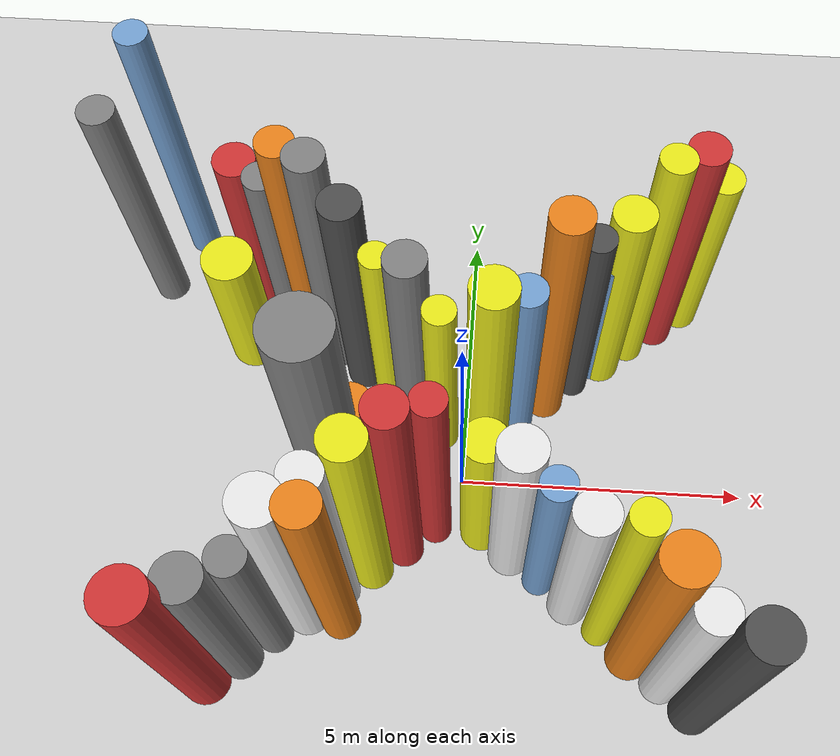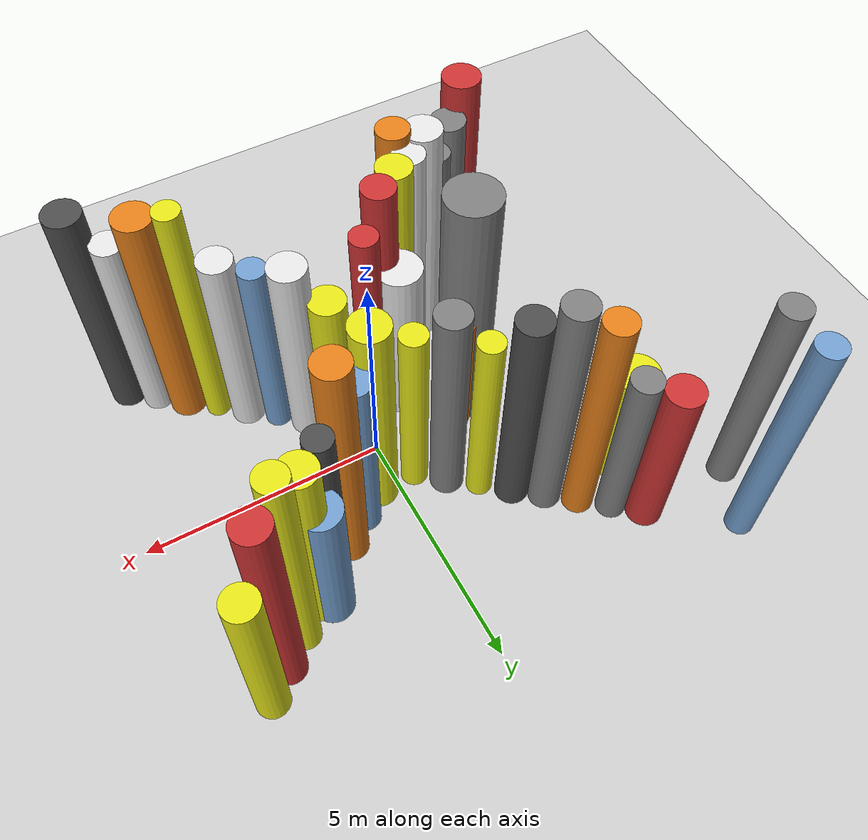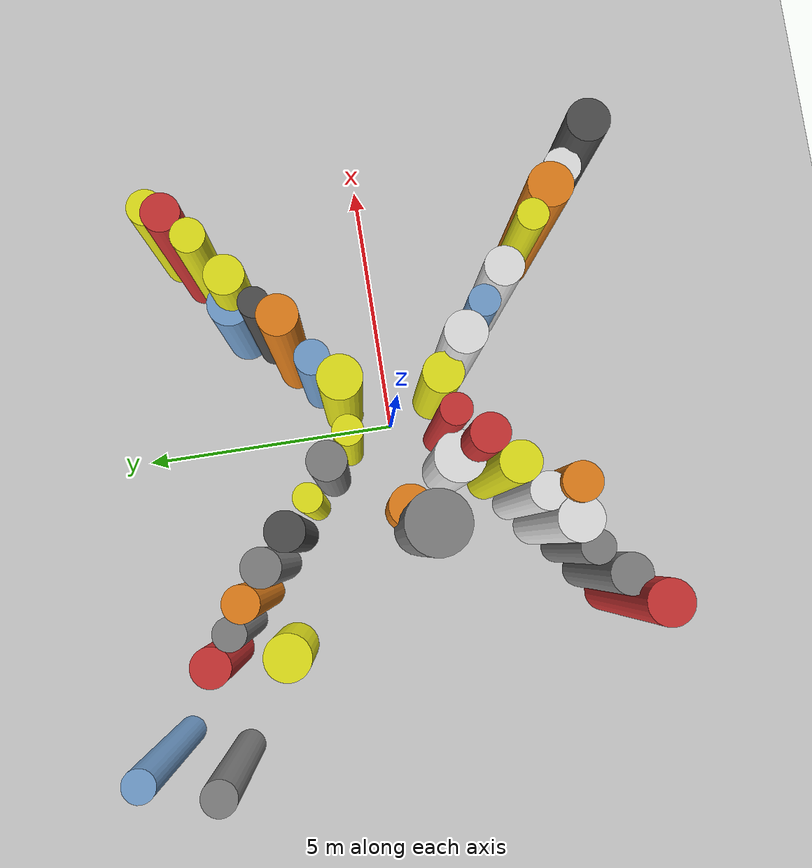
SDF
<?xml version='1.0'?>
<sdf version='1.6'>
  <world name='routeA_rl_v1__dense_recovery__rl_val__bottleneck_corridor__000030'>
    <!-- Sun light -->
    <light name='sun' type='directional'>
      <cast_shadows>1</cast_shadows>
      <pose>0 0 10 0 0 0</pose>
      <diffuse>0.8 0.8 0.8 1</diffuse>
      <specular>0.2 0.2 0.2 1</specular>
      <attenuation>
        <range>1000</range>
        <constant>0.9</constant>
        <linear>0.01</linear>
        <quadratic>0.001</quadratic>
      </attenuation>
      <direction>-0.5 0.1 -0.9</direction>
    </light>

    <!-- Ground plane -->
    <model name='ground_plane'>
      <static>1</static>
      <link name='link'>
        <collision name='collision'>
          <geometry>
            <plane>
              <normal>0 0 1</normal>
              <size>100 100</size>
            </plane>
          </geometry>
          <surface>
            <contact>
              <collide_bitmask>65535</collide_bitmask>
              <ode/>
            </contact>
            <friction>
              <ode>
                <mu>100</mu>
                <mu2>50</mu2>
              </ode>
              <torsional><ode/></torsional>
            </friction>
            <bounce/>
          </surface>
          <max_contacts>10</max_contacts>
        </collision>
        <visual name='visual'>
          <cast_shadows>0</cast_shadows>
          <geometry>
            <plane>
              <normal>0 0 1</normal>
              <size>100 100</size>
            </plane>
          </geometry>
          <material>
            <script>
              <uri>file://media/materials/scripts/gazebo.material</uri>
              <n>Gazebo/Grey</n>
            </script>
          </material>
        </visual>
      </link>
    </model>

    <!-- Environment -->
    <magnetic_field>6e-06 2.3e-05 -4.2e-05</magnetic_field>
    <atmosphere type='adiabatic'/>
    <physics name='default_physics' default='0' type='ode'>
      <gravity>0 0 -9.8</gravity>
      <max_step_size>0.004</max_step_size>
      <real_time_factor>1</real_time_factor>
      <real_time_update_rate>250</real_time_update_rate>
    </physics>
    <scene>
      <ambient>0.4 0.4 0.4 1</ambient>
      <background>0.7 0.7 0.7 1</background>
      <shadows>1</shadows>
    </scene>
    <wind/>
    <spherical_coordinates>
      <surface_model>EARTH_WGS84</surface_model>
      <latitude_deg>0</latitude_deg>
      <longitude_deg>0</longitude_deg>
      <elevation>0</elevation>
      <heading_deg>0</heading_deg>
    </spherical_coordinates>

    <!-- ============ OBSTACLES (40) ============ -->
    <model name='funnel_l_0'>
      <static>1</static>
      <link name='link'>
        <visual name='visual'>
          <geometry>
            <cylinder>
              <radius>0.3980</radius>
              <length>5.3075</length>
            </cylinder>
          </geometry>
          <material>
            <script>
              <n>Gazebo/Red</n>
              <uri>file://media/materials/scripts/gazebo.material</uri>
            </script>
            <ambient>0.8 0.2 0.2 1</ambient>
          </material>
        </visual>
        <collision name='collision'>
          <geometry>
            <cylinder>
              <radius>0.3980</radius>
              <length>5.3075</length>
            </cylinder>
          </geometry>
          <max_contacts>10</max_contacts>
          <surface>
            <contact><ode/></contact>
            <bounce/>
            <friction>
              <ode><mu>1</mu><mu2>1</mu2></ode>
              <torsional><ode/></torsional>
            </friction>
          </surface>
        </collision>
      </link>
      <pose>-4.0000 -3.8000 2.6538 0 0 0.0000</pose>
    </model>

    <model name='funnel_r_0'>
      <static>1</static>
      <link name='link'>
        <visual name='visual'>
          <geometry>
            <cylinder>
              <radius>0.3617</radius>
              <length>4.1192</length>
            </cylinder>
          </geometry>
          <material>
            <script>
              <n>Gazebo/Red</n>
              <uri>file://media/materials/scripts/gazebo.material</uri>
            </script>
            <ambient>0.8 0.2 0.2 1</ambient>
          </material>
        </visual>
        <collision name='collision'>
          <geometry>
            <cylinder>
              <radius>0.3617</radius>
              <length>4.1192</length>
            </cylinder>
          </geometry>
          <max_contacts>10</max_contacts>
          <surface>
            <contact><ode/></contact>
            <bounce/>
            <friction>
              <ode><mu>1</mu><mu2>1</mu2></ode>
              <torsional><ode/></torsional>
            </friction>
          </surface>
        </collision>
      </link>
      <pose>-4.0000 3.8000 2.0596 0 0 0.0000</pose>
    </model>

    <model name='funnel_l_1'>
      <static>1</static>
      <link name='link'>
        <visual name='visual'>
          <geometry>
            <cylinder>
              <radius>0.3618</radius>
              <length>4.7340</length>
            </cylinder>
          </geometry>
          <material>
            <script>
              <n>Gazebo/Grey</n>
              <uri>file://media/materials/scripts/gazebo.material</uri>
            </script>
            <ambient>0.5 0.5 0.5 1</ambient>
          </material>
        </visual>
        <collision name='collision'>
          <geometry>
            <cylinder>
              <radius>0.3618</radius>
              <length>4.7340</length>
            </cylinder>
          </geometry>
          <max_contacts>10</max_contacts>
          <surface>
            <contact><ode/></contact>
            <bounce/>
            <friction>
              <ode><mu>1</mu><mu2>1</mu2></ode>
              <torsional><ode/></torsional>
            </friction>
          </surface>
        </collision>
      </link>
      <pose>-3.4857 -3.3857 2.3670 0 0 0.0000</pose>
    </model>

    <model name='funnel_r_1'>
      <static>1</static>
      <link name='link'>
        <visual name='visual'>
          <geometry>
            <cylinder>
              <radius>0.3008</radius>
              <length>4.2655</length>
            </cylinder>
          </geometry>
          <material>
            <script>
              <n>Gazebo/Grey</n>
              <uri>file://media/materials/scripts/gazebo.material</uri>
            </script>
            <ambient>0.5 0.5 0.5 1</ambient>
          </material>
        </visual>
        <collision name='collision'>
          <geometry>
            <cylinder>
              <radius>0.3008</radius>
              <length>4.2655</length>
            </cylinder>
          </geometry>
          <max_contacts>10</max_contacts>
          <surface>
            <contact><ode/></contact>
            <bounce/>
            <friction>
              <ode><mu>1</mu><mu2>1</mu2></ode>
              <torsional><ode/></torsional>
            </friction>
          </surface>
        </collision>
      </link>
      <pose>-3.4857 3.3857 2.1327 0 0 0.0000</pose>
    </model>

    <model name='funnel_l_2'>
      <static>1</static>
      <link name='link'>
        <visual name='visual'>
          <geometry>
            <cylinder>
              <radius>0.3044</radius>
              <length>4.4410</length>
            </cylinder>
          </geometry>
          <material>
            <script>
              <n>Gazebo/Grey</n>
              <uri>file://media/materials/scripts/gazebo.material</uri>
            </script>
            <ambient>0.5 0.5 0.5 1</ambient>
          </material>
        </visual>
        <collision name='collision'>
          <geometry>
            <cylinder>
              <radius>0.3044</radius>
              <length>4.4410</length>
            </cylinder>
          </geometry>
          <max_contacts>10</max_contacts>
          <surface>
            <contact><ode/></contact>
            <bounce/>
            <friction>
              <ode><mu>1</mu><mu2>1</mu2></ode>
              <torsional><ode/></torsional>
            </friction>
          </surface>
        </collision>
      </link>
      <pose>-2.9714 -2.9714 2.2205 0 0 0.0000</pose>
    </model>

    <model name='funnel_r_2'>
      <static>1</static>
      <link name='link'>
        <visual name='visual'>
          <geometry>
            <cylinder>
              <radius>0.3118</radius>
              <length>5.6683</length>
            </cylinder>
          </geometry>
          <material>
            <script>
              <n>Gazebo/Orange</n>
              <uri>file://media/materials/scripts/gazebo.material</uri>
            </script>
            <ambient>0.9 0.5 0.1 1</ambient>
          </material>
        </visual>
        <collision name='collision'>
          <geometry>
            <cylinder>
              <radius>0.3118</radius>
              <length>5.6683</length>
            </cylinder>
          </geometry>
          <max_contacts>10</max_contacts>
          <surface>
            <contact><ode/></contact>
            <bounce/>
            <friction>
              <ode><mu>1</mu><mu2>1</mu2></ode>
              <torsional><ode/></torsional>
            </friction>
          </surface>
        </collision>
      </link>
      <pose>-2.9714 2.9714 2.8341 0 0 0.0000</pose>
    </model>

    <model name='funnel_l_3'>
      <static>1</static>
      <link name='link'>
        <visual name='visual'>
          <geometry>
            <cylinder>
              <radius>0.3859</radius>
              <length>5.5624</length>
            </cylinder>
          </geometry>
          <material>
            <script>
              <n>Gazebo/White</n>
              <uri>file://media/materials/scripts/gazebo.material</uri>
            </script>
            <ambient>0.9 0.9 0.9 1</ambient>
          </material>
        </visual>
        <collision name='collision'>
          <geometry>
            <cylinder>
              <radius>0.3859</radius>
              <length>5.5624</length>
            </cylinder>
          </geometry>
          <max_contacts>10</max_contacts>
          <surface>
            <contact><ode/></contact>
            <bounce/>
            <friction>
              <ode><mu>1</mu><mu2>1</mu2></ode>
              <torsional><ode/></torsional>
            </friction>
          </surface>
        </collision>
      </link>
      <pose>-2.4571 -2.5571 2.7812 0 0 0.0000</pose>
    </model>

    <model name='funnel_r_3'>
      <static>1</static>
      <link name='link'>
        <visual name='visual'>
          <geometry>
            <cylinder>
              <radius>0.3276</radius>
              <length>5.9145</length>
            </cylinder>
          </geometry>
          <material>
            <script>
              <n>Gazebo/Grey</n>
              <uri>file://media/materials/scripts/gazebo.material</uri>
            </script>
            <ambient>0.5 0.5 0.5 1</ambient>
          </material>
        </visual>
        <collision name='collision'>
          <geometry>
            <cylinder>
              <radius>0.3276</radius>
              <length>5.9145</length>
            </cylinder>
          </geometry>
          <max_contacts>10</max_contacts>
          <surface>
            <contact><ode/></contact>
            <bounce/>
            <friction>
              <ode><mu>1</mu><mu2>1</mu2></ode>
              <torsional><ode/></torsional>
            </friction>
          </surface>
        </collision>
      </link>
      <pose>-2.4571 2.5571 2.9573 0 0 0.0000</pose>
    </model>

    <model name='funnel_l_4'>
      <static>1</static>
      <link name='link'>
        <visual name='visual'>
          <geometry>
            <cylinder>
              <radius>0.3222</radius>
              <length>5.5002</length>
            </cylinder>
          </geometry>
          <material>
            <script>
              <n>Gazebo/White</n>
              <uri>file://media/materials/scripts/gazebo.material</uri>
            </script>
            <ambient>0.9 0.9 0.9 1</ambient>
          </material>
        </visual>
        <collision name='collision'>
          <geometry>
            <cylinder>
              <radius>0.3222</radius>
              <length>5.5002</length>
            </cylinder>
          </geometry>
          <max_contacts>10</max_contacts>
          <surface>
            <contact><ode/></contact>
            <bounce/>
            <friction>
              <ode><mu>1</mu><mu2>1</mu2></ode>
              <torsional><ode/></torsional>
            </friction>
          </surface>
        </collision>
      </link>
      <pose>-1.9429 -2.1429 2.7501 0 0 0.0000</pose>
    </model>

    <model name='funnel_r_4'>
      <static>1</static>
      <link name='link'>
        <visual name='visual'>
          <geometry>
            <cylinder>
              <radius>0.3421</radius>
              <length>5.3939</length>
            </cylinder>
          </geometry>
          <material>
            <script>
              <n>Gazebo/DarkGrey</n>
              <uri>file://media/materials/scripts/gazebo.material</uri>
            </script>
            <ambient>0.3 0.3 0.3 1</ambient>
          </material>
        </visual>
        <collision name='collision'>
          <geometry>
            <cylinder>
              <radius>0.3421</radius>
              <length>5.3939</length>
            </cylinder>
          </geometry>
          <max_contacts>10</max_contacts>
          <surface>
            <contact><ode/></contact>
            <bounce/>
            <friction>
              <ode><mu>1</mu><mu2>1</mu2></ode>
              <torsional><ode/></torsional>
            </friction>
          </surface>
        </collision>
      </link>
      <pose>-1.9429 2.1429 2.6970 0 0 0.0000</pose>
    </model>

    <model name='funnel_l_5'>
      <static>1</static>
      <link name='link'>
        <visual name='visual'>
          <geometry>
            <cylinder>
              <radius>0.3473</radius>
              <length>5.7511</length>
            </cylinder>
          </geometry>
          <material>
            <script>
              <n>Gazebo/Yellow</n>
              <uri>file://media/materials/scripts/gazebo.material</uri>
            </script>
            <ambient>0.9 0.9 0.1 1</ambient>
          </material>
        </visual>
        <collision name='collision'>
          <geometry>
            <cylinder>
              <radius>0.3473</radius>
              <length>5.7511</length>
            </cylinder>
          </geometry>
          <max_contacts>10</max_contacts>
          <surface>
            <contact><ode/></contact>
            <bounce/>
            <friction>
              <ode><mu>1</mu><mu2>1</mu2></ode>
              <torsional><ode/></torsional>
            </friction>
          </surface>
        </collision>
      </link>
      <pose>-1.4286 -1.7286 2.8755 0 0 0.0000</pose>
    </model>

    <model name='funnel_r_5'>
      <static>1</static>
      <link name='link'>
        <visual name='visual'>
          <geometry>
            <cylinder>
              <radius>0.2592</radius>
              <length>4.6819</length>
            </cylinder>
          </geometry>
          <material>
            <script>
              <n>Gazebo/Yellow</n>
              <uri>file://media/materials/scripts/gazebo.material</uri>
            </script>
            <ambient>0.9 0.9 0.1 1</ambient>
          </material>
        </visual>
        <collision name='collision'>
          <geometry>
            <cylinder>
              <radius>0.2592</radius>
              <length>4.6819</length>
            </cylinder>
          </geometry>
          <max_contacts>10</max_contacts>
          <surface>
            <contact><ode/></contact>
            <bounce/>
            <friction>
              <ode><mu>1</mu><mu2>1</mu2></ode>
              <torsional><ode/></torsional>
            </friction>
          </surface>
        </collision>
      </link>
      <pose>-1.4286 1.7286 2.3409 0 0 0.0000</pose>
    </model>

    <model name='funnel_l_6'>
      <static>1</static>
      <link name='link'>
        <visual name='visual'>
          <geometry>
            <cylinder>
              <radius>0.3286</radius>
              <length>5.8573</length>
            </cylinder>
          </geometry>
          <material>
            <script>
              <n>Gazebo/Red</n>
              <uri>file://media/materials/scripts/gazebo.material</uri>
            </script>
            <ambient>0.8 0.2 0.2 1</ambient>
          </material>
        </visual>
        <collision name='collision'>
          <geometry>
            <cylinder>
              <radius>0.3286</radius>
              <length>5.8573</length>
            </cylinder>
          </geometry>
          <max_contacts>10</max_contacts>
          <surface>
            <contact><ode/></contact>
            <bounce/>
            <friction>
              <ode><mu>1</mu><mu2>1</mu2></ode>
              <torsional><ode/></torsional>
            </friction>
          </surface>
        </collision>
      </link>
      <pose>-0.9143 -1.3143 2.9286 0 0 0.0000</pose>
    </model>

    <model name='funnel_r_6'>
      <static>1</static>
      <link name='link'>
        <visual name='visual'>
          <geometry>
            <cylinder>
              <radius>0.3399</radius>
              <length>5.2633</length>
            </cylinder>
          </geometry>
          <material>
            <script>
              <n>Gazebo/Grey</n>
              <uri>file://media/materials/scripts/gazebo.material</uri>
            </script>
            <ambient>0.5 0.5 0.5 1</ambient>
          </material>
        </visual>
        <collision name='collision'>
          <geometry>
            <cylinder>
              <radius>0.3399</radius>
              <length>5.2633</length>
            </cylinder>
          </geometry>
          <max_contacts>10</max_contacts>
          <surface>
            <contact><ode/></contact>
            <bounce/>
            <friction>
              <ode><mu>1</mu><mu2>1</mu2></ode>
              <torsional><ode/></torsional>
            </friction>
          </surface>
        </collision>
      </link>
      <pose>-0.9143 1.3143 2.6317 0 0 0.0000</pose>
    </model>

    <model name='funnel_l_7'>
      <static>1</static>
      <link name='link'>
        <visual name='visual'>
          <geometry>
            <cylinder>
              <radius>0.2756</radius>
              <length>5.2886</length>
            </cylinder>
          </geometry>
          <material>
            <script>
              <n>Gazebo/Red</n>
              <uri>file://media/materials/scripts/gazebo.material</uri>
            </script>
            <ambient>0.8 0.2 0.2 1</ambient>
          </material>
        </visual>
        <collision name='collision'>
          <geometry>
            <cylinder>
              <radius>0.2756</radius>
              <length>5.2886</length>
            </cylinder>
          </geometry>
          <max_contacts>10</max_contacts>
          <surface>
            <contact><ode/></contact>
            <bounce/>
            <friction>
              <ode><mu>1</mu><mu2>1</mu2></ode>
              <torsional><ode/></torsional>
            </friction>
          </surface>
        </collision>
      </link>
      <pose>-0.4000 -0.9000 2.6443 0 0 0.0000</pose>
    </model>

    <model name='funnel_r_7'>
      <static>1</static>
      <link name='link'>
        <visual name='visual'>
          <geometry>
            <cylinder>
              <radius>0.2715</radius>
              <length>4.5744</length>
            </cylinder>
          </geometry>
          <material>
            <script>
              <n>Gazebo/Yellow</n>
              <uri>file://media/materials/scripts/gazebo.material</uri>
            </script>
            <ambient>0.9 0.9 0.1 1</ambient>
          </material>
        </visual>
        <collision name='collision'>
          <geometry>
            <cylinder>
              <radius>0.2715</radius>
              <length>4.5744</length>
            </cylinder>
          </geometry>
          <max_contacts>10</max_contacts>
          <surface>
            <contact><ode/></contact>
            <bounce/>
            <friction>
              <ode><mu>1</mu><mu2>1</mu2></ode>
              <torsional><ode/></torsional>
            </friction>
          </surface>
        </collision>
      </link>
      <pose>-0.4000 0.9000 2.2872 0 0 0.0000</pose>
    </model>

    <model name='funnel_out_l_0'>
      <static>1</static>
      <link name='link'>
        <visual name='visual'>
          <geometry>
            <cylinder>
              <radius>0.3690</radius>
              <length>4.0368</length>
            </cylinder>
          </geometry>
          <material>
            <script>
              <n>Gazebo/Yellow</n>
              <uri>file://media/materials/scripts/gazebo.material</uri>
            </script>
            <ambient>0.9 0.9 0.1 1</ambient>
          </material>
        </visual>
        <collision name='collision'>
          <geometry>
            <cylinder>
              <radius>0.3690</radius>
              <length>4.0368</length>
            </cylinder>
          </geometry>
          <max_contacts>10</max_contacts>
          <surface>
            <contact><ode/></contact>
            <bounce/>
            <friction>
              <ode><mu>1</mu><mu2>1</mu2></ode>
              <torsional><ode/></torsional>
            </friction>
          </surface>
        </collision>
      </link>
      <pose>0.4000 -0.9000 2.0184 0 0 0.0000</pose>
    </model>

    <model name='funnel_out_r_0'>
      <static>1</static>
      <link name='link'>
        <visual name='visual'>
          <geometry>
            <cylinder>
              <radius>0.3831</radius>
              <length>5.3002</length>
            </cylinder>
          </geometry>
          <material>
            <script>
              <n>Gazebo/Yellow</n>
              <uri>file://media/materials/scripts/gazebo.material</uri>
            </script>
            <ambient>0.9 0.9 0.1 1</ambient>
          </material>
        </visual>
        <collision name='collision'>
          <geometry>
            <cylinder>
              <radius>0.3831</radius>
              <length>5.3002</length>
            </cylinder>
          </geometry>
          <max_contacts>10</max_contacts>
          <surface>
            <contact><ode/></contact>
            <bounce/>
            <friction>
              <ode><mu>1</mu><mu2>1</mu2></ode>
              <torsional><ode/></torsional>
            </friction>
          </surface>
        </collision>
      </link>
      <pose>0.4000 0.9000 2.6501 0 0 0.0000</pose>
    </model>

    <model name='funnel_out_l_1'>
      <static>1</static>
      <link name='link'>
        <visual name='visual'>
          <geometry>
            <cylinder>
              <radius>0.3769</radius>
              <length>4.7989</length>
            </cylinder>
          </geometry>
          <material>
            <script>
              <n>Gazebo/White</n>
              <uri>file://media/materials/scripts/gazebo.material</uri>
            </script>
            <ambient>0.9 0.9 0.9 1</ambient>
          </material>
        </visual>
        <collision name='collision'>
          <geometry>
            <cylinder>
              <radius>0.3769</radius>
              <length>4.7989</length>
            </cylinder>
          </geometry>
          <max_contacts>10</max_contacts>
          <surface>
            <contact><ode/></contact>
            <bounce/>
            <friction>
              <ode><mu>1</mu><mu2>1</mu2></ode>
              <torsional><ode/></torsional>
            </friction>
          </surface>
        </collision>
      </link>
      <pose>0.9143 -1.3143 2.3995 0 0 0.0000</pose>
    </model>

    <model name='funnel_out_r_1'>
      <static>1</static>
      <link name='link'>
        <visual name='visual'>
          <geometry>
            <cylinder>
              <radius>0.3098</radius>
              <length>4.5907</length>
            </cylinder>
          </geometry>
          <material>
            <script>
              <n>Gazebo/Blue</n>
              <uri>file://media/materials/scripts/gazebo.material</uri>
            </script>
            <ambient>0.447 0.624 0.812 1</ambient>
          </material>
        </visual>
        <collision name='collision'>
          <geometry>
            <cylinder>
              <radius>0.3098</radius>
              <length>4.5907</length>
            </cylinder>
          </geometry>
          <max_contacts>10</max_contacts>
          <surface>
            <contact><ode/></contact>
            <bounce/>
            <friction>
              <ode><mu>1</mu><mu2>1</mu2></ode>
              <torsional><ode/></torsional>
            </friction>
          </surface>
        </collision>
      </link>
      <pose>0.9143 1.3143 2.2954 0 0 0.0000</pose>
    </model>

    <model name='funnel_out_l_2'>
      <static>1</static>
      <link name='link'>
        <visual name='visual'>
          <geometry>
            <cylinder>
              <radius>0.2780</radius>
              <length>4.6219</length>
            </cylinder>
          </geometry>
          <material>
            <script>
              <n>Gazebo/Blue</n>
              <uri>file://media/materials/scripts/gazebo.material</uri>
            </script>
            <ambient>0.447 0.624 0.812 1</ambient>
          </material>
        </visual>
        <collision name='collision'>
          <geometry>
            <cylinder>
              <radius>0.2780</radius>
              <length>4.6219</length>
            </cylinder>
          </geometry>
          <max_contacts>10</max_contacts>
          <surface>
            <contact><ode/></contact>
            <bounce/>
            <friction>
              <ode><mu>1</mu><mu2>1</mu2></ode>
              <torsional><ode/></torsional>
            </friction>
          </surface>
        </collision>
      </link>
      <pose>1.4286 -1.7286 2.3109 0 0 0.0000</pose>
    </model>

    <model name='funnel_out_r_2'>
      <static>1</static>
      <link name='link'>
        <visual name='visual'>
          <geometry>
            <cylinder>
              <radius>0.3422</radius>
              <length>5.9537</length>
            </cylinder>
          </geometry>
          <material>
            <script>
              <n>Gazebo/Orange</n>
              <uri>file://media/materials/scripts/gazebo.material</uri>
            </script>
            <ambient>0.9 0.5 0.1 1</ambient>
          </material>
        </visual>
        <collision name='collision'>
          <geometry>
            <cylinder>
              <radius>0.3422</radius>
              <length>5.9537</length>
            </cylinder>
          </geometry>
          <max_contacts>10</max_contacts>
          <surface>
            <contact><ode/></contact>
            <bounce/>
            <friction>
              <ode><mu>1</mu><mu2>1</mu2></ode>
              <torsional><ode/></torsional>
            </friction>
          </surface>
        </collision>
      </link>
      <pose>1.4286 1.7286 2.9768 0 0 0.0000</pose>
    </model>

    <model name='funnel_out_l_3'>
      <static>1</static>
      <link name='link'>
        <visual name='visual'>
          <geometry>
            <cylinder>
              <radius>0.3477</radius>
              <length>4.7130</length>
            </cylinder>
          </geometry>
          <material>
            <script>
              <n>Gazebo/White</n>
              <uri>file://media/materials/scripts/gazebo.material</uri>
            </script>
            <ambient>0.9 0.9 0.9 1</ambient>
          </material>
        </visual>
        <collision name='collision'>
          <geometry>
            <cylinder>
              <radius>0.3477</radius>
              <length>4.7130</length>
            </cylinder>
          </geometry>
          <max_contacts>10</max_contacts>
          <surface>
            <contact><ode/></contact>
            <bounce/>
            <friction>
              <ode><mu>1</mu><mu2>1</mu2></ode>
              <torsional><ode/></torsional>
            </friction>
          </surface>
        </collision>
      </link>
      <pose>1.9429 -2.1429 2.3565 0 0 0.0000</pose>
    </model>

    <model name='funnel_out_r_3'>
      <static>1</static>
      <link name='link'>
        <visual name='visual'>
          <geometry>
            <cylinder>
              <radius>0.2707</radius>
              <length>4.8299</length>
            </cylinder>
          </geometry>
          <material>
            <script>
              <n>Gazebo/DarkGrey</n>
              <uri>file://media/materials/scripts/gazebo.material</uri>
            </script>
            <ambient>0.3 0.3 0.3 1</ambient>
          </material>
        </visual>
        <collision name='collision'>
          <geometry>
            <cylinder>
              <radius>0.2707</radius>
              <length>4.8299</length>
            </cylinder>
          </geometry>
          <max_contacts>10</max_contacts>
          <surface>
            <contact><ode/></contact>
            <bounce/>
            <friction>
              <ode><mu>1</mu><mu2>1</mu2></ode>
              <torsional><ode/></torsional>
            </friction>
          </surface>
        </collision>
      </link>
      <pose>1.9429 2.1429 2.4149 0 0 0.0000</pose>
    </model>

    <model name='funnel_out_l_4'>
      <static>1</static>
      <link name='link'>
        <visual name='visual'>
          <geometry>
            <cylinder>
              <radius>0.2616</radius>
              <length>5.8102</length>
            </cylinder>
          </geometry>
          <material>
            <script>
              <n>Gazebo/Yellow</n>
              <uri>file://media/materials/scripts/gazebo.material</uri>
            </script>
            <ambient>0.9 0.9 0.1 1</ambient>
          </material>
        </visual>
        <collision name='collision'>
          <geometry>
            <cylinder>
              <radius>0.2616</radius>
              <length>5.8102</length>
            </cylinder>
          </geometry>
          <max_contacts>10</max_contacts>
          <surface>
            <contact><ode/></contact>
            <bounce/>
            <friction>
              <ode><mu>1</mu><mu2>1</mu2></ode>
              <torsional><ode/></torsional>
            </friction>
          </surface>
        </collision>
      </link>
      <pose>2.4571 -2.5571 2.9051 0 0 0.0000</pose>
    </model>

    <model name='funnel_out_r_4'>
      <static>1</static>
      <link name='link'>
        <visual name='visual'>
          <geometry>
            <cylinder>
              <radius>0.3507</radius>
              <length>4.9235</length>
            </cylinder>
          </geometry>
          <material>
            <script>
              <n>Gazebo/Yellow</n>
              <uri>file://media/materials/scripts/gazebo.material</uri>
            </script>
            <ambient>0.9 0.9 0.1 1</ambient>
          </material>
        </visual>
        <collision name='collision'>
          <geometry>
            <cylinder>
              <radius>0.3507</radius>
              <length>4.9235</length>
            </cylinder>
          </geometry>
          <max_contacts>10</max_contacts>
          <surface>
            <contact><ode/></contact>
            <bounce/>
            <friction>
              <ode><mu>1</mu><mu2>1</mu2></ode>
              <torsional><ode/></torsional>
            </friction>
          </surface>
        </collision>
      </link>
      <pose>2.4571 2.5571 2.4618 0 0 0.0000</pose>
    </model>

    <model name='funnel_out_l_5'>
      <static>1</static>
      <link name='link'>
        <visual name='visual'>
          <geometry>
            <cylinder>
              <radius>0.3821</radius>
              <length>5.5481</length>
            </cylinder>
          </geometry>
          <material>
            <script>
              <n>Gazebo/Orange</n>
              <uri>file://media/materials/scripts/gazebo.material</uri>
            </script>
            <ambient>0.9 0.5 0.1 1</ambient>
          </material>
        </visual>
        <collision name='collision'>
          <geometry>
            <cylinder>
              <radius>0.3821</radius>
              <length>5.5481</length>
            </cylinder>
          </geometry>
          <max_contacts>10</max_contacts>
          <surface>
            <contact><ode/></contact>
            <bounce/>
            <friction>
              <ode><mu>1</mu><mu2>1</mu2></ode>
              <torsional><ode/></torsional>
            </friction>
          </surface>
        </collision>
      </link>
      <pose>2.9714 -2.9714 2.7740 0 0 0.0000</pose>
    </model>

    <model name='funnel_out_r_5'>
      <static>1</static>
      <link name='link'>
        <visual name='visual'>
          <geometry>
            <cylinder>
              <radius>0.2911</radius>
              <length>5.7464</length>
            </cylinder>
          </geometry>
          <material>
            <script>
              <n>Gazebo/Yellow</n>
              <uri>file://media/materials/scripts/gazebo.material</uri>
            </script>
            <ambient>0.9 0.9 0.1 1</ambient>
          </material>
        </visual>
        <collision name='collision'>
          <geometry>
            <cylinder>
              <radius>0.2911</radius>
              <length>5.7464</length>
            </cylinder>
          </geometry>
          <max_contacts>10</max_contacts>
          <surface>
            <contact><ode/></contact>
            <bounce/>
            <friction>
              <ode><mu>1</mu><mu2>1</mu2></ode>
              <torsional><ode/></torsional>
            </friction>
          </surface>
        </collision>
      </link>
      <pose>2.9714 2.9714 2.8732 0 0 0.0000</pose>
    </model>

    <model name='funnel_out_l_6'>
      <static>1</static>
      <link name='link'>
        <visual name='visual'>
          <geometry>
            <cylinder>
              <radius>0.3243</radius>
              <length>4.7531</length>
            </cylinder>
          </geometry>
          <material>
            <script>
              <n>Gazebo/White</n>
              <uri>file://media/materials/scripts/gazebo.material</uri>
            </script>
            <ambient>0.9 0.9 0.9 1</ambient>
          </material>
        </visual>
        <collision name='collision'>
          <geometry>
            <cylinder>
              <radius>0.3243</radius>
              <length>4.7531</length>
            </cylinder>
          </geometry>
          <max_contacts>10</max_contacts>
          <surface>
            <contact><ode/></contact>
            <bounce/>
            <friction>
              <ode><mu>1</mu><mu2>1</mu2></ode>
              <torsional><ode/></torsional>
            </friction>
          </surface>
        </collision>
      </link>
      <pose>3.4857 -3.3857 2.3766 0 0 0.0000</pose>
    </model>

    <model name='funnel_out_r_6'>
      <static>1</static>
      <link name='link'>
        <visual name='visual'>
          <geometry>
            <cylinder>
              <radius>0.3309</radius>
              <length>5.4979</length>
            </cylinder>
          </geometry>
          <material>
            <script>
              <n>Gazebo/Red</n>
              <uri>file://media/materials/scripts/gazebo.material</uri>
            </script>
            <ambient>0.8 0.2 0.2 1</ambient>
          </material>
        </visual>
        <collision name='collision'>
          <geometry>
            <cylinder>
              <radius>0.3309</radius>
              <length>5.4979</length>
            </cylinder>
          </geometry>
          <max_contacts>10</max_contacts>
          <surface>
            <contact><ode/></contact>
            <bounce/>
            <friction>
              <ode><mu>1</mu><mu2>1</mu2></ode>
              <torsional><ode/></torsional>
            </friction>
          </surface>
        </collision>
      </link>
      <pose>3.4857 3.3857 2.7490 0 0 0.0000</pose>
    </model>

    <model name='funnel_out_l_7'>
      <static>1</static>
      <link name='link'>
        <visual name='visual'>
          <geometry>
            <cylinder>
              <radius>0.3693</radius>
              <length>5.3793</length>
            </cylinder>
          </geometry>
          <material>
            <script>
              <n>Gazebo/DarkGrey</n>
              <uri>file://media/materials/scripts/gazebo.material</uri>
            </script>
            <ambient>0.3 0.3 0.3 1</ambient>
          </material>
        </visual>
        <collision name='collision'>
          <geometry>
            <cylinder>
              <radius>0.3693</radius>
              <length>5.3793</length>
            </cylinder>
          </geometry>
          <max_contacts>10</max_contacts>
          <surface>
            <contact><ode/></contact>
            <bounce/>
            <friction>
              <ode><mu>1</mu><mu2>1</mu2></ode>
              <torsional><ode/></torsional>
            </friction>
          </surface>
        </collision>
      </link>
      <pose>4.0000 -3.8000 2.6897 0 0 0.0000</pose>
    </model>

    <model name='funnel_out_r_7'>
      <static>1</static>
      <link name='link'>
        <visual name='visual'>
          <geometry>
            <cylinder>
              <radius>0.3256</radius>
              <length>4.2867</length>
            </cylinder>
          </geometry>
          <material>
            <script>
              <n>Gazebo/Yellow</n>
              <uri>file://media/materials/scripts/gazebo.material</uri>
            </script>
            <ambient>0.9 0.9 0.1 1</ambient>
          </material>
        </visual>
        <collision name='collision'>
          <geometry>
            <cylinder>
              <radius>0.3256</radius>
              <length>4.2867</length>
            </cylinder>
          </geometry>
          <max_contacts>10</max_contacts>
          <surface>
            <contact><ode/></contact>
            <bounce/>
            <friction>
              <ode><mu>1</mu><mu2>1</mu2></ode>
              <torsional><ode/></torsional>
            </friction>
          </surface>
        </collision>
      </link>
      <pose>4.0000 3.8000 2.1433 0 0 0.0000</pose>
    </model>

    <model name='bn_scatter_0'>
      <static>1</static>
      <link name='link'>
        <visual name='visual'>
          <geometry>
            <cylinder>
              <radius>0.5450</radius>
              <length>5.9654</length>
            </cylinder>
          </geometry>
          <material>
            <script>
              <n>Gazebo/Grey</n>
              <uri>file://media/materials/scripts/gazebo.material</uri>
            </script>
            <ambient>0.5 0.5 0.5 1</ambient>
          </material>
        </visual>
        <collision name='collision'>
          <geometry>
            <cylinder>
              <radius>0.5450</radius>
              <length>5.9654</length>
            </cylinder>
          </geometry>
          <max_contacts>10</max_contacts>
          <surface>
            <contact><ode/></contact>
            <bounce/>
            <friction>
              <ode><mu>1</mu><mu2>1</mu2></ode>
              <torsional><ode/></torsional>
            </friction>
          </surface>
        </collision>
      </link>
      <pose>-2.1890 -0.2782 2.9827 0 0 0.0000</pose>
    </model>

    <model name='bn_scatter_1'>
      <static>1</static>
      <link name='link'>
        <visual name='visual'>
          <geometry>
            <cylinder>
              <radius>0.4460</radius>
              <length>3.0580</length>
            </cylinder>
          </geometry>
          <material>
            <script>
              <n>Gazebo/Yellow</n>
              <uri>file://media/materials/scripts/gazebo.material</uri>
            </script>
            <ambient>0.9 0.9 0.1 1</ambient>
          </material>
        </visual>
        <collision name='collision'>
          <geometry>
            <cylinder>
              <radius>0.4460</radius>
              <length>3.0580</length>
            </cylinder>
          </geometry>
          <max_contacts>10</max_contacts>
          <surface>
            <contact><ode/></contact>
            <bounce/>
            <friction>
              <ode><mu>1</mu><mu2>1</mu2></ode>
              <torsional><ode/></torsional>
            </friction>
          </surface>
        </collision>
      </link>
      <pose>-4.1191 2.5676 1.5290 0 0 0.0000</pose>
    </model>

    <model name='bn_scatter_2'>
      <static>1</static>
      <link name='link'>
        <visual name='visual'>
          <geometry>
            <cylinder>
              <radius>0.4626</radius>
              <length>4.0614</length>
            </cylinder>
          </geometry>
          <material>
            <script>
              <n>Gazebo/White</n>
              <uri>file://media/materials/scripts/gazebo.material</uri>
            </script>
            <ambient>0.9 0.9 0.9 1</ambient>
          </material>
        </visual>
        <collision name='collision'>
          <geometry>
            <cylinder>
              <radius>0.4626</radius>
              <length>4.0614</length>
            </cylinder>
          </geometry>
          <max_contacts>10</max_contacts>
          <surface>
            <contact><ode/></contact>
            <bounce/>
            <friction>
              <ode><mu>1</mu><mu2>1</mu2></ode>
              <torsional><ode/></torsional>
            </friction>
          </surface>
        </collision>
      </link>
      <pose>-1.0899 -0.9566 2.0307 0 0 0.0000</pose>
    </model>

    <model name='bn_scatter_3'>
      <static>1</static>
      <link name='link'>
        <visual name='visual'>
          <geometry>
            <cylinder>
              <radius>0.2807</radius>
              <length>5.7093</length>
            </cylinder>
          </geometry>
          <material>
            <script>
              <n>Gazebo/Blue</n>
              <uri>file://media/materials/scripts/gazebo.material</uri>
            </script>
            <ambient>0.447 0.624 0.812 1</ambient>
          </material>
        </visual>
        <collision name='collision'>
          <geometry>
            <cylinder>
              <radius>0.2807</radius>
              <length>5.7093</length>
            </cylinder>
          </geometry>
          <max_contacts>10</max_contacts>
          <surface>
            <contact><ode/></contact>
            <bounce/>
            <friction>
              <ode><mu>1</mu><mu2>1</mu2></ode>
              <torsional><ode/></torsional>
            </friction>
          </surface>
        </collision>
      </link>
      <pose>-5.4948 4.9199 2.8547 0 0 0.0000</pose>
    </model>

    <model name='bn_scatter_4'>
      <static>1</static>
      <link name='link'>
        <visual name='visual'>
          <geometry>
            <cylinder>
              <radius>0.3317</radius>
              <length>5.7278</length>
            </cylinder>
          </geometry>
          <material>
            <script>
              <n>Gazebo/Orange</n>
              <uri>file://media/materials/scripts/gazebo.material</uri>
            </script>
            <ambient>0.9 0.5 0.1 1</ambient>
          </material>
        </visual>
        <collision name='collision'>
          <geometry>
            <cylinder>
              <radius>0.3317</radius>
              <length>5.7278</length>
            </cylinder>
          </geometry>
          <max_contacts>10</max_contacts>
          <surface>
            <contact><ode/></contact>
            <bounce/>
            <friction>
              <ode><mu>1</mu><mu2>1</mu2></ode>
              <torsional><ode/></torsional>
            </friction>
          </surface>
        </collision>
      </link>
      <pose>-1.8857 -2.6459 2.8639 0 0 0.0000</pose>
    </model>

    <model name='bn_scatter_5'>
      <static>1</static>
      <link name='link'>
        <visual name='visual'>
          <geometry>
            <cylinder>
              <radius>0.4050</radius>
              <length>3.0761</length>
            </cylinder>
          </geometry>
          <material>
            <script>
              <n>Gazebo/Orange</n>
              <uri>file://media/materials/scripts/gazebo.material</uri>
            </script>
            <ambient>0.9 0.5 0.1 1</ambient>
          </material>
        </visual>
        <collision name='collision'>
          <geometry>
            <cylinder>
              <radius>0.4050</radius>
              <length>3.0761</length>
            </cylinder>
          </geometry>
          <max_contacts>10</max_contacts>
          <surface>
            <contact><ode/></contact>
            <bounce/>
            <friction>
              <ode><mu>1</mu><mu2>1</mu2></ode>
              <torsional><ode/></torsional>
            </friction>
          </surface>
        </collision>
      </link>
      <pose>-1.7753 -0.0232 1.5381 0 0 0.0000</pose>
    </model>

    <model name='bn_scatter_6'>
      <static>1</static>
      <link name='link'>
        <visual name='visual'>
          <geometry>
            <cylinder>
              <radius>0.4044</radius>
              <length>3.6422</length>
            </cylinder>
          </geometry>
          <material>
            <script>
              <n>Gazebo/Blue</n>
              <uri>file://media/materials/scripts/gazebo.material</uri>
            </script>
            <ambient>0.447 0.624 0.812 1</ambient>
          </material>
        </visual>
        <collision name='collision'>
          <geometry>
            <cylinder>
              <radius>0.4044</radius>
              <length>3.6422</length>
            </cylinder>
          </geometry>
          <max_contacts>10</max_contacts>
          <surface>
            <contact><ode/></contact>
            <bounce/>
            <friction>
              <ode><mu>1</mu><mu2>1</mu2></ode>
              <torsional><ode/></torsional>
            </friction>
          </surface>
        </collision>
      </link>
      <pose>2.2488 2.6436 1.8211 0 0 0.0000</pose>
    </model>

    <model name='bn_scatter_7'>
      <static>1</static>
      <link name='link'>
        <visual name='visual'>
          <geometry>
            <cylinder>
              <radius>0.3089</radius>
              <length>5.1806</length>
            </cylinder>
          </geometry>
          <material>
            <script>
              <n>Gazebo/Grey</n>
              <uri>file://media/materials/scripts/gazebo.material</uri>
            </script>
            <ambient>0.5 0.5 0.5 1</ambient>
          </material>
        </visual>
        <collision name='collision'>
          <geometry>
            <cylinder>
              <radius>0.3089</radius>
              <length>5.1806</length>
            </cylinder>
          </geometry>
          <max_contacts>10</max_contacts>
          <surface>
            <contact><ode/></contact>
            <bounce/>
            <friction>
              <ode><mu>1</mu><mu2>1</mu2></ode>
              <torsional><ode/></torsional>
            </friction>
          </surface>
        </collision>
      </link>
      <pose>-5.9644 3.7967 2.5903 0 0 0.0000</pose>
    </model>

    <!-- GUI camera -->
    <gui fullscreen='0'>
      <camera name='user_camera'>
        <pose>-15 0 18 0 0.85 0.15</pose>
        <view_controller>orbit</view_controller>
        <projection_type>perspective</projection_type>
      </camera>
    </gui>
  </world>
</sdf>
